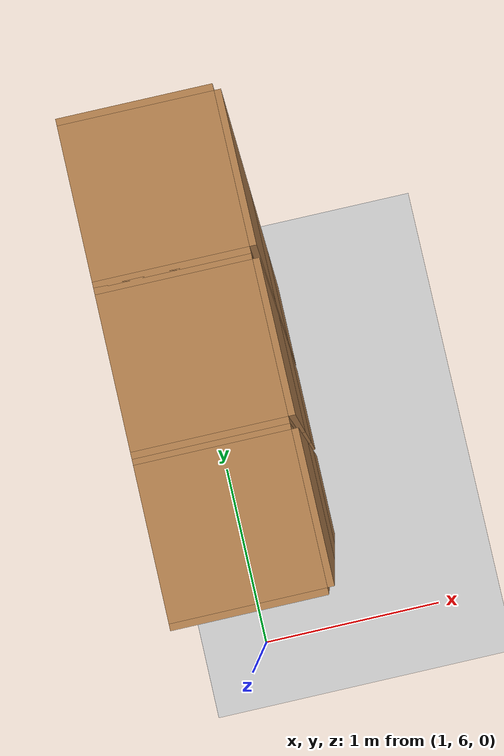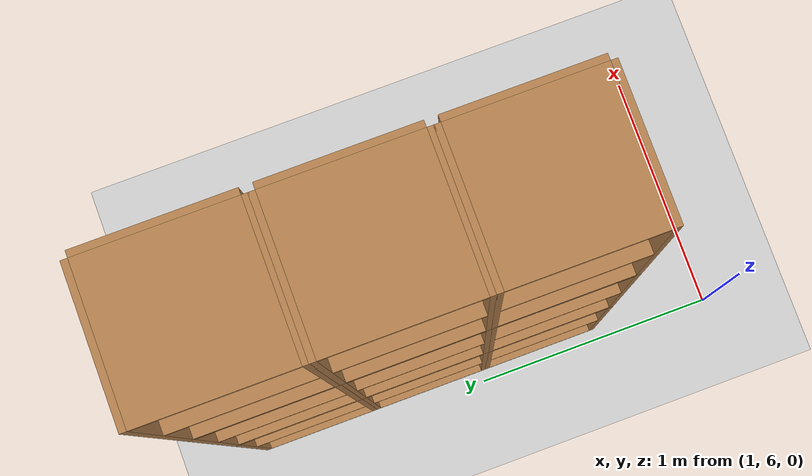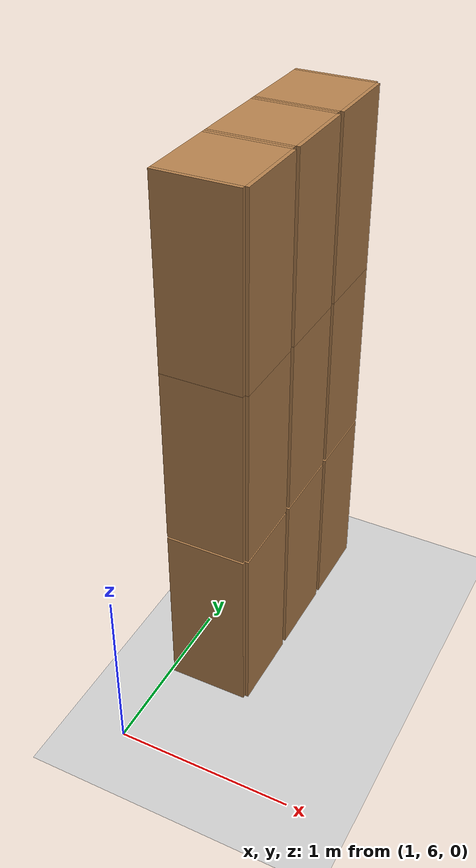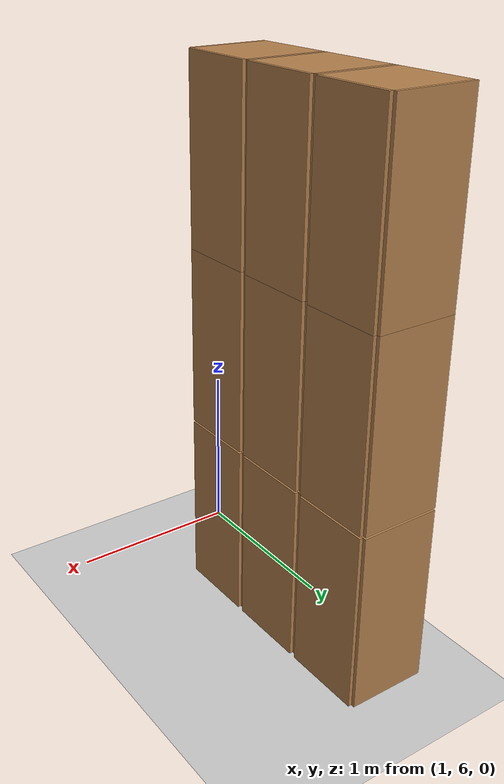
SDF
<sdf version="1.6">
 <world name="default">
  <model name="ground_plane">
   <static>1</static>
   <link name="link">
    <collision name="collision">
     <geometry><plane><normal>0 0 1</normal><size>100 100</size></plane></geometry>
     <surface>
      <contact><collide_bitmask>65535</collide_bitmask></contact>
      <friction><ode><mu>100</mu><mu2>50</mu2></ode></friction>
     </surface>
    </collision>
    <visual name="visual">
     <cast_shadows>0</cast_shadows>
     <geometry><plane><normal>0 0 1</normal><size>100 100</size></plane></geometry>
     <material>
      <script><uri>file://media/materials/scripts/gazebo.material</uri><name>Gazebo/Grey</name></script>
     </material>
    </visual>
   </link>
  </model>
  <model name="Locker18_clone_4_clone_2">
   <model name="Locker18">
    <model name="Locker3">
     <model name="cabinet">
      <static>1</static>
      <link name="cabinet_bottom_plate">
       <inertial>
        <pose>0 0 -1 0 -0 0</pose>
        <inertia><ixx>2.05</ixx><ixy>0</ixy><ixz>0</ixz><iyy>2.05</iyy><iyz>0</iyz><izz>2.05</izz></inertia>
        <mass>25</mass>
       </inertial>
       <collision name="cabinet_bottom_plate_geom">
        <pose>0 0 0.01 0 -0 0</pose>
        <geometry><box><size>0.45 0.45 0.02</size></box></geometry>
       </collision>
       <visual name="cabinet_bottom_plate_geom_visual">
        <pose>0 0 0.01 0 -0 0</pose>
        <geometry><box><size>0.45 0.45 0.02</size></box></geometry>
        <material>
         <script><uri>file://media/materials/scripts/gazebo.material</uri><name>Gazebo/Wood</name></script>
        </material>
       </visual>
       <collision name="cabinet_bottom_plate_geom_cabinet_back_plate">
        <pose>0.235 0 0.51 0 -0 0</pose>
        <geometry><box><size>0.02 0.45 1.02</size></box></geometry>
       </collision>
       <visual name="cabinet_bottom_plate_geom_cabinet_back_plate_visual">
        <pose>0.235 0 0.51 0 -0 0</pose>
        <geometry><box><size>0.02 0.45 1.02</size></box></geometry>
        <material>
         <script><uri>file://media/materials/scripts/gazebo.material</uri><name>Gazebo/Wood</name></script>
        </material>
       </visual>
       <collision name="cabinet_bottom_plate_geom_cabinet_left_plate">
        <pose>0 0.235 0.51 0 -0 0</pose>
        <geometry><box><size>0.45 0.02 1.02</size></box></geometry>
       </collision>
       <visual name="cabinet_bottom_plate_geom_cabinet_left_plate_visual">
        <pose>0 0.235 0.51 0 -0 0</pose>
        <geometry><box><size>0.45 0.02 1.02</size></box></geometry>
        <material>
         <script><uri>file://media/materials/scripts/gazebo.material</uri><name>Gazebo/Wood</name></script>
        </material>
       </visual>
       <collision name="cabinet_bottom_plate_geom_cabinet_middle_plate">
        <pose>0 0 0.51 0 -0 0</pose>
        <geometry><box><size>0.45 0.45 0.02</size></box></geometry>
       </collision>
       <visual name="cabinet_bottom_plate_geom_cabinet_middle_plate_visual">
        <pose>0 0 0.51 0 -0 0</pose>
        <geometry><box><size>0.45 0.45 0.02</size></box></geometry>
        <material>
         <script><uri>file://media/materials/scripts/gazebo.material</uri><name>Gazebo/Wood</name></script>
        </material>
       </visual>
       <collision name="cabinet_bottom_plate_geom_cabinet_right_plate">
        <pose>0 -0.235 0.51 0 -0 0</pose>
        <geometry><box><size>0.45 0.02 1.02</size></box></geometry>
       </collision>
       <visual name="cabinet_bottom_plate_geom_cabinet_right_plate_visual">
        <pose>0 -0.235 0.51 0 -0 0</pose>
        <geometry><box><size>0.45 0.02 1.02</size></box></geometry>
        <material>
         <script><uri>file://media/materials/scripts/gazebo.material</uri><name>Gazebo/Wood</name></script>
        </material>
       </visual>
       <collision name="cabinet_bottom_plate_geom_cabinet_top_plate">
        <pose>0 0 1.01 0 -0 0</pose>
        <geometry><box><size>0.45 0.45 0.02</size></box></geometry>
       </collision>
       <visual name="cabinet_bottom_plate_geom_cabinet_top_plate_visual">
        <pose>0 0 1.01 0 -0 0</pose>
        <geometry><box><size>0.45 0.45 0.02</size></box></geometry>
        <material>
         <script><uri>file://media/materials/scripts/gazebo.material</uri><name>Gazebo/Wood</name></script>
        </material>
       </visual>
      </link>
      <pose>-0.676968 1.45758 0 0 -0 0</pose>
     </model>
     <model name="cabinet_clone">
      <static>1</static>
      <link name="cabinet_bottom_plate">
       <inertial>
        <pose>0 0 -1 0 -0 0</pose>
        <inertia><ixx>2.05</ixx><ixy>0</ixy><ixz>0</ixz><iyy>2.05</iyy><iyz>0</iyz><izz>2.05</izz></inertia>
        <mass>25</mass>
       </inertial>
       <collision name="cabinet_bottom_plate_geom">
        <pose>0 0 0.01 0 -0 0</pose>
        <geometry><box><size>0.45 0.45 0.02</size></box></geometry>
       </collision>
       <visual name="cabinet_bottom_plate_geom_visual">
        <pose>0 0 0.01 0 -0 0</pose>
        <geometry><box><size>0.45 0.45 0.02</size></box></geometry>
        <material>
         <script><uri>file://media/materials/scripts/gazebo.material</uri><name>Gazebo/Wood</name></script>
        </material>
       </visual>
       <collision name="cabinet_bottom_plate_geom_cabinet_back_plate">
        <pose>0.235 0 0.51 0 -0 0</pose>
        <geometry><box><size>0.02 0.45 1.02</size></box></geometry>
       </collision>
       <visual name="cabinet_bottom_plate_geom_cabinet_back_plate_visual">
        <pose>0.235 0 0.51 0 -0 0</pose>
        <geometry><box><size>0.02 0.45 1.02</size></box></geometry>
        <material>
         <script><uri>file://media/materials/scripts/gazebo.material</uri><name>Gazebo/Wood</name></script>
        </material>
       </visual>
       <collision name="cabinet_bottom_plate_geom_cabinet_left_plate">
        <pose>0 0.235 0.51 0 -0 0</pose>
        <geometry><box><size>0.45 0.02 1.02</size></box></geometry>
       </collision>
       <visual name="cabinet_bottom_plate_geom_cabinet_left_plate_visual">
        <pose>0 0.235 0.51 0 -0 0</pose>
        <geometry><box><size>0.45 0.02 1.02</size></box></geometry>
        <material>
         <script><uri>file://media/materials/scripts/gazebo.material</uri><name>Gazebo/Wood</name></script>
        </material>
       </visual>
       <collision name="cabinet_bottom_plate_geom_cabinet_middle_plate">
        <pose>0 0 0.51 0 -0 0</pose>
        <geometry><box><size>0.45 0.45 0.02</size></box></geometry>
       </collision>
       <visual name="cabinet_bottom_plate_geom_cabinet_middle_plate_visual">
        <pose>0 0 0.51 0 -0 0</pose>
        <geometry><box><size>0.45 0.45 0.02</size></box></geometry>
        <material>
         <script><uri>file://media/materials/scripts/gazebo.material</uri><name>Gazebo/Wood</name></script>
        </material>
       </visual>
       <collision name="cabinet_bottom_plate_geom_cabinet_right_plate">
        <pose>0 -0.235 0.51 0 -0 0</pose>
        <geometry><box><size>0.45 0.02 1.02</size></box></geometry>
       </collision>
       <visual name="cabinet_bottom_plate_geom_cabinet_right_plate_visual">
        <pose>0 -0.235 0.51 0 -0 0</pose>
        <geometry><box><size>0.45 0.02 1.02</size></box></geometry>
        <material>
         <script><uri>file://media/materials/scripts/gazebo.material</uri><name>Gazebo/Wood</name></script>
        </material>
       </visual>
       <collision name="cabinet_bottom_plate_geom_cabinet_top_plate">
        <pose>0 0 1.01 0 -0 0</pose>
        <geometry><box><size>0.45 0.45 0.02</size></box></geometry>
       </collision>
       <visual name="cabinet_bottom_plate_geom_cabinet_top_plate_visual">
        <pose>0 0 1.01 0 -0 0</pose>
        <geometry><box><size>0.45 0.45 0.02</size></box></geometry>
        <material>
         <script><uri>file://media/materials/scripts/gazebo.material</uri><name>Gazebo/Wood</name></script>
        </material>
       </visual>
      </link>
      <pose>-0.676968 0.970971 0 0 -0 0</pose>
     </model>
     <model name="cabinet_clone_0">
      <static>1</static>
      <link name="cabinet_bottom_plate">
       <inertial>
        <pose>0 0 -1 0 -0 0</pose>
        <inertia><ixx>2.05</ixx><ixy>0</ixy><ixz>0</ixz><iyy>2.05</iyy><iyz>0</iyz><izz>2.05</izz></inertia>
        <mass>25</mass>
       </inertial>
       <collision name="cabinet_bottom_plate_geom">
        <pose>0 0 0.01 0 -0 0</pose>
        <geometry><box><size>0.45 0.45 0.02</size></box></geometry>
       </collision>
       <visual name="cabinet_bottom_plate_geom_visual">
        <pose>0 0 0.01 0 -0 0</pose>
        <geometry><box><size>0.45 0.45 0.02</size></box></geometry>
        <material>
         <script><uri>file://media/materials/scripts/gazebo.material</uri><name>Gazebo/Wood</name></script>
        </material>
       </visual>
       <collision name="cabinet_bottom_plate_geom_cabinet_back_plate">
        <pose>0.235 0 0.51 0 -0 0</pose>
        <geometry><box><size>0.02 0.45 1.02</size></box></geometry>
       </collision>
       <visual name="cabinet_bottom_plate_geom_cabinet_back_plate_visual">
        <pose>0.235 0 0.51 0 -0 0</pose>
        <geometry><box><size>0.02 0.45 1.02</size></box></geometry>
        <material>
         <script><uri>file://media/materials/scripts/gazebo.material</uri><name>Gazebo/Wood</name></script>
        </material>
       </visual>
       <collision name="cabinet_bottom_plate_geom_cabinet_left_plate">
        <pose>0 0.235 0.51 0 -0 0</pose>
        <geometry><box><size>0.45 0.02 1.02</size></box></geometry>
       </collision>
       <visual name="cabinet_bottom_plate_geom_cabinet_left_plate_visual">
        <pose>0 0.235 0.51 0 -0 0</pose>
        <geometry><box><size>0.45 0.02 1.02</size></box></geometry>
        <material>
         <script><uri>file://media/materials/scripts/gazebo.material</uri><name>Gazebo/Wood</name></script>
        </material>
       </visual>
       <collision name="cabinet_bottom_plate_geom_cabinet_middle_plate">
        <pose>0 0 0.51 0 -0 0</pose>
        <geometry><box><size>0.45 0.45 0.02</size></box></geometry>
       </collision>
       <visual name="cabinet_bottom_plate_geom_cabinet_middle_plate_visual">
        <pose>0 0 0.51 0 -0 0</pose>
        <geometry><box><size>0.45 0.45 0.02</size></box></geometry>
        <material>
         <script><uri>file://media/materials/scripts/gazebo.material</uri><name>Gazebo/Wood</name></script>
        </material>
       </visual>
       <collision name="cabinet_bottom_plate_geom_cabinet_right_plate">
        <pose>0 -0.235 0.51 0 -0 0</pose>
        <geometry><box><size>0.45 0.02 1.02</size></box></geometry>
       </collision>
       <visual name="cabinet_bottom_plate_geom_cabinet_right_plate_visual">
        <pose>0 -0.235 0.51 0 -0 0</pose>
        <geometry><box><size>0.45 0.02 1.02</size></box></geometry>
        <material>
         <script><uri>file://media/materials/scripts/gazebo.material</uri><name>Gazebo/Wood</name></script>
        </material>
       </visual>
       <collision name="cabinet_bottom_plate_geom_cabinet_top_plate">
        <pose>0 0 1.01 0 -0 0</pose>
        <geometry><box><size>0.45 0.45 0.02</size></box></geometry>
       </collision>
       <visual name="cabinet_bottom_plate_geom_cabinet_top_plate_visual">
        <pose>0 0 1.01 0 -0 0</pose>
        <geometry><box><size>0.45 0.45 0.02</size></box></geometry>
        <material>
         <script><uri>file://media/materials/scripts/gazebo.material</uri><name>Gazebo/Wood</name></script>
        </material>
       </visual>
      </link>
      <pose>-0.676968 0.48391 0 0 -0 0</pose>
     </model>
     <static>0</static>
     <pose>0 3e-06 -1.02763 0 -0 0</pose>
    </model>
    <model name="Locker3_clone">
     <model name="cabinet">
      <static>1</static>
      <link name="cabinet_bottom_plate">
       <inertial>
        <pose>0 0 -1 0 -0 0</pose>
        <inertia><ixx>2.05</ixx><ixy>0</ixy><ixz>0</ixz><iyy>2.05</iyy><iyz>0</iyz><izz>2.05</izz></inertia>
        <mass>25</mass>
       </inertial>
       <collision name="cabinet_bottom_plate_geom">
        <pose>0 0 0.01 0 -0 0</pose>
        <geometry><box><size>0.45 0.45 0.02</size></box></geometry>
       </collision>
       <visual name="cabinet_bottom_plate_geom_visual">
        <pose>0 0 0.01 0 -0 0</pose>
        <geometry><box><size>0.45 0.45 0.02</size></box></geometry>
        <material>
         <script><uri>file://media/materials/scripts/gazebo.material</uri><name>Gazebo/Wood</name></script>
        </material>
       </visual>
       <collision name="cabinet_bottom_plate_geom_cabinet_back_plate">
        <pose>0.235 0 0.51 0 -0 0</pose>
        <geometry><box><size>0.02 0.45 1.02</size></box></geometry>
       </collision>
       <visual name="cabinet_bottom_plate_geom_cabinet_back_plate_visual">
        <pose>0.235 0 0.51 0 -0 0</pose>
        <geometry><box><size>0.02 0.45 1.02</size></box></geometry>
        <material>
         <script><uri>file://media/materials/scripts/gazebo.material</uri><name>Gazebo/Wood</name></script>
        </material>
       </visual>
       <collision name="cabinet_bottom_plate_geom_cabinet_left_plate">
        <pose>0 0.235 0.51 0 -0 0</pose>
        <geometry><box><size>0.45 0.02 1.02</size></box></geometry>
       </collision>
       <visual name="cabinet_bottom_plate_geom_cabinet_left_plate_visual">
        <pose>0 0.235 0.51 0 -0 0</pose>
        <geometry><box><size>0.45 0.02 1.02</size></box></geometry>
        <material>
         <script><uri>file://media/materials/scripts/gazebo.material</uri><name>Gazebo/Wood</name></script>
        </material>
       </visual>
       <collision name="cabinet_bottom_plate_geom_cabinet_middle_plate">
        <pose>0 0 0.51 0 -0 0</pose>
        <geometry><box><size>0.45 0.45 0.02</size></box></geometry>
       </collision>
       <visual name="cabinet_bottom_plate_geom_cabinet_middle_plate_visual">
        <pose>0 0 0.51 0 -0 0</pose>
        <geometry><box><size>0.45 0.45 0.02</size></box></geometry>
        <material>
         <script><uri>file://media/materials/scripts/gazebo.material</uri><name>Gazebo/Wood</name></script>
        </material>
       </visual>
       <collision name="cabinet_bottom_plate_geom_cabinet_right_plate">
        <pose>0 -0.235 0.51 0 -0 0</pose>
        <geometry><box><size>0.45 0.02 1.02</size></box></geometry>
       </collision>
       <visual name="cabinet_bottom_plate_geom_cabinet_right_plate_visual">
        <pose>0 -0.235 0.51 0 -0 0</pose>
        <geometry><box><size>0.45 0.02 1.02</size></box></geometry>
        <material>
         <script><uri>file://media/materials/scripts/gazebo.material</uri><name>Gazebo/Wood</name></script>
        </material>
       </visual>
       <collision name="cabinet_bottom_plate_geom_cabinet_top_plate">
        <pose>0 0 1.01 0 -0 0</pose>
        <geometry><box><size>0.45 0.45 0.02</size></box></geometry>
       </collision>
       <visual name="cabinet_bottom_plate_geom_cabinet_top_plate_visual">
        <pose>0 0 1.01 0 -0 0</pose>
        <geometry><box><size>0.45 0.45 0.02</size></box></geometry>
        <material>
         <script><uri>file://media/materials/scripts/gazebo.material</uri><name>Gazebo/Wood</name></script>
        </material>
       </visual>
      </link>
      <pose>-0.676968 1.45758 0 0 -0 0</pose>
     </model>
     <model name="cabinet_clone">
      <static>1</static>
      <link name="cabinet_bottom_plate">
       <inertial>
        <pose>0 0 -1 0 -0 0</pose>
        <inertia><ixx>2.05</ixx><ixy>0</ixy><ixz>0</ixz><iyy>2.05</iyy><iyz>0</iyz><izz>2.05</izz></inertia>
        <mass>25</mass>
       </inertial>
       <collision name="cabinet_bottom_plate_geom">
        <pose>0 0 0.01 0 -0 0</pose>
        <geometry><box><size>0.45 0.45 0.02</size></box></geometry>
       </collision>
       <visual name="cabinet_bottom_plate_geom_visual">
        <pose>0 0 0.01 0 -0 0</pose>
        <geometry><box><size>0.45 0.45 0.02</size></box></geometry>
        <material>
         <script><uri>file://media/materials/scripts/gazebo.material</uri><name>Gazebo/Wood</name></script>
        </material>
       </visual>
       <collision name="cabinet_bottom_plate_geom_cabinet_back_plate">
        <pose>0.235 0 0.51 0 -0 0</pose>
        <geometry><box><size>0.02 0.45 1.02</size></box></geometry>
       </collision>
       <visual name="cabinet_bottom_plate_geom_cabinet_back_plate_visual">
        <pose>0.235 0 0.51 0 -0 0</pose>
        <geometry><box><size>0.02 0.45 1.02</size></box></geometry>
        <material>
         <script><uri>file://media/materials/scripts/gazebo.material</uri><name>Gazebo/Wood</name></script>
        </material>
       </visual>
       <collision name="cabinet_bottom_plate_geom_cabinet_left_plate">
        <pose>0 0.235 0.51 0 -0 0</pose>
        <geometry><box><size>0.45 0.02 1.02</size></box></geometry>
       </collision>
       <visual name="cabinet_bottom_plate_geom_cabinet_left_plate_visual">
        <pose>0 0.235 0.51 0 -0 0</pose>
        <geometry><box><size>0.45 0.02 1.02</size></box></geometry>
        <material>
         <script><uri>file://media/materials/scripts/gazebo.material</uri><name>Gazebo/Wood</name></script>
        </material>
       </visual>
       <collision name="cabinet_bottom_plate_geom_cabinet_middle_plate">
        <pose>0 0 0.51 0 -0 0</pose>
        <geometry><box><size>0.45 0.45 0.02</size></box></geometry>
       </collision>
       <visual name="cabinet_bottom_plate_geom_cabinet_middle_plate_visual">
        <pose>0 0 0.51 0 -0 0</pose>
        <geometry><box><size>0.45 0.45 0.02</size></box></geometry>
        <material>
         <script><uri>file://media/materials/scripts/gazebo.material</uri><name>Gazebo/Wood</name></script>
        </material>
       </visual>
       <collision name="cabinet_bottom_plate_geom_cabinet_right_plate">
        <pose>0 -0.235 0.51 0 -0 0</pose>
        <geometry><box><size>0.45 0.02 1.02</size></box></geometry>
       </collision>
       <visual name="cabinet_bottom_plate_geom_cabinet_right_plate_visual">
        <pose>0 -0.235 0.51 0 -0 0</pose>
        <geometry><box><size>0.45 0.02 1.02</size></box></geometry>
        <material>
         <script><uri>file://media/materials/scripts/gazebo.material</uri><name>Gazebo/Wood</name></script>
        </material>
       </visual>
       <collision name="cabinet_bottom_plate_geom_cabinet_top_plate">
        <pose>0 0 1.01 0 -0 0</pose>
        <geometry><box><size>0.45 0.45 0.02</size></box></geometry>
       </collision>
       <visual name="cabinet_bottom_plate_geom_cabinet_top_plate_visual">
        <pose>0 0 1.01 0 -0 0</pose>
        <geometry><box><size>0.45 0.45 0.02</size></box></geometry>
        <material>
         <script><uri>file://media/materials/scripts/gazebo.material</uri><name>Gazebo/Wood</name></script>
        </material>
       </visual>
      </link>
      <pose>-0.676968 0.970971 0 0 -0 0</pose>
     </model>
     <model name="cabinet_clone_0">
      <static>1</static>
      <link name="cabinet_bottom_plate">
       <inertial>
        <pose>0 0 -1 0 -0 0</pose>
        <inertia><ixx>2.05</ixx><ixy>0</ixy><ixz>0</ixz><iyy>2.05</iyy><iyz>0</iyz><izz>2.05</izz></inertia>
        <mass>25</mass>
       </inertial>
       <collision name="cabinet_bottom_plate_geom">
        <pose>0 0 0.01 0 -0 0</pose>
        <geometry><box><size>0.45 0.45 0.02</size></box></geometry>
       </collision>
       <visual name="cabinet_bottom_plate_geom_visual">
        <pose>0 0 0.01 0 -0 0</pose>
        <geometry><box><size>0.45 0.45 0.02</size></box></geometry>
        <material>
         <script><uri>file://media/materials/scripts/gazebo.material</uri><name>Gazebo/Wood</name></script>
        </material>
       </visual>
       <collision name="cabinet_bottom_plate_geom_cabinet_back_plate">
        <pose>0.235 0 0.51 0 -0 0</pose>
        <geometry><box><size>0.02 0.45 1.02</size></box></geometry>
       </collision>
       <visual name="cabinet_bottom_plate_geom_cabinet_back_plate_visual">
        <pose>0.235 0 0.51 0 -0 0</pose>
        <geometry><box><size>0.02 0.45 1.02</size></box></geometry>
        <material>
         <script><uri>file://media/materials/scripts/gazebo.material</uri><name>Gazebo/Wood</name></script>
        </material>
       </visual>
       <collision name="cabinet_bottom_plate_geom_cabinet_left_plate">
        <pose>0 0.235 0.51 0 -0 0</pose>
        <geometry><box><size>0.45 0.02 1.02</size></box></geometry>
       </collision>
       <visual name="cabinet_bottom_plate_geom_cabinet_left_plate_visual">
        <pose>0 0.235 0.51 0 -0 0</pose>
        <geometry><box><size>0.45 0.02 1.02</size></box></geometry>
        <material>
         <script><uri>file://media/materials/scripts/gazebo.material</uri><name>Gazebo/Wood</name></script>
        </material>
       </visual>
       <collision name="cabinet_bottom_plate_geom_cabinet_middle_plate">
        <pose>0 0 0.51 0 -0 0</pose>
        <geometry><box><size>0.45 0.45 0.02</size></box></geometry>
       </collision>
       <visual name="cabinet_bottom_plate_geom_cabinet_middle_plate_visual">
        <pose>0 0 0.51 0 -0 0</pose>
        <geometry><box><size>0.45 0.45 0.02</size></box></geometry>
        <material>
         <script><uri>file://media/materials/scripts/gazebo.material</uri><name>Gazebo/Wood</name></script>
        </material>
       </visual>
       <collision name="cabinet_bottom_plate_geom_cabinet_right_plate">
        <pose>0 -0.235 0.51 0 -0 0</pose>
        <geometry><box><size>0.45 0.02 1.02</size></box></geometry>
       </collision>
       <visual name="cabinet_bottom_plate_geom_cabinet_right_plate_visual">
        <pose>0 -0.235 0.51 0 -0 0</pose>
        <geometry><box><size>0.45 0.02 1.02</size></box></geometry>
        <material>
         <script><uri>file://media/materials/scripts/gazebo.material</uri><name>Gazebo/Wood</name></script>
        </material>
       </visual>
       <collision name="cabinet_bottom_plate_geom_cabinet_top_plate">
        <pose>0 0 1.01 0 -0 0</pose>
        <geometry><box><size>0.45 0.45 0.02</size></box></geometry>
       </collision>
       <visual name="cabinet_bottom_plate_geom_cabinet_top_plate_visual">
        <pose>0 0 1.01 0 -0 0</pose>
        <geometry><box><size>0.45 0.45 0.02</size></box></geometry>
        <material>
         <script><uri>file://media/materials/scripts/gazebo.material</uri><name>Gazebo/Wood</name></script>
        </material>
       </visual>
      </link>
      <pose>-0.676968 0.48391 0 0 -0 0</pose>
     </model>
     <static>0</static>
     <pose>0 3e-06 0.003717 0 -0 0</pose>
    </model>
    <model name="Locker3_clone_clone">
     <model name="cabinet">
      <static>1</static>
      <link name="cabinet_bottom_plate">
       <inertial>
        <pose>0 0 -1 0 -0 0</pose>
        <inertia><ixx>2.05</ixx><ixy>0</ixy><ixz>0</ixz><iyy>2.05</iyy><iyz>0</iyz><izz>2.05</izz></inertia>
        <mass>25</mass>
       </inertial>
       <collision name="cabinet_bottom_plate_geom">
        <pose>0 0 0.01 0 -0 0</pose>
        <geometry><box><size>0.45 0.45 0.02</size></box></geometry>
       </collision>
       <visual name="cabinet_bottom_plate_geom_visual">
        <pose>0 0 0.01 0 -0 0</pose>
        <geometry><box><size>0.45 0.45 0.02</size></box></geometry>
        <material>
         <script><uri>file://media/materials/scripts/gazebo.material</uri><name>Gazebo/Wood</name></script>
        </material>
       </visual>
       <collision name="cabinet_bottom_plate_geom_cabinet_back_plate">
        <pose>0.235 0 0.51 0 -0 0</pose>
        <geometry><box><size>0.02 0.45 1.02</size></box></geometry>
       </collision>
       <visual name="cabinet_bottom_plate_geom_cabinet_back_plate_visual">
        <pose>0.235 0 0.51 0 -0 0</pose>
        <geometry><box><size>0.02 0.45 1.02</size></box></geometry>
        <material>
         <script><uri>file://media/materials/scripts/gazebo.material</uri><name>Gazebo/Wood</name></script>
        </material>
       </visual>
       <collision name="cabinet_bottom_plate_geom_cabinet_left_plate">
        <pose>0 0.235 0.51 0 -0 0</pose>
        <geometry><box><size>0.45 0.02 1.02</size></box></geometry>
       </collision>
       <visual name="cabinet_bottom_plate_geom_cabinet_left_plate_visual">
        <pose>0 0.235 0.51 0 -0 0</pose>
        <geometry><box><size>0.45 0.02 1.02</size></box></geometry>
        <material>
         <script><uri>file://media/materials/scripts/gazebo.material</uri><name>Gazebo/Wood</name></script>
        </material>
       </visual>
       <collision name="cabinet_bottom_plate_geom_cabinet_middle_plate">
        <pose>0 0 0.51 0 -0 0</pose>
        <geometry><box><size>0.45 0.45 0.02</size></box></geometry>
       </collision>
       <visual name="cabinet_bottom_plate_geom_cabinet_middle_plate_visual">
        <pose>0 0 0.51 0 -0 0</pose>
        <geometry><box><size>0.45 0.45 0.02</size></box></geometry>
        <material>
         <script><uri>file://media/materials/scripts/gazebo.material</uri><name>Gazebo/Wood</name></script>
        </material>
       </visual>
       <collision name="cabinet_bottom_plate_geom_cabinet_right_plate">
        <pose>0 -0.235 0.51 0 -0 0</pose>
        <geometry><box><size>0.45 0.02 1.02</size></box></geometry>
       </collision>
       <visual name="cabinet_bottom_plate_geom_cabinet_right_plate_visual">
        <pose>0 -0.235 0.51 0 -0 0</pose>
        <geometry><box><size>0.45 0.02 1.02</size></box></geometry>
        <material>
         <script><uri>file://media/materials/scripts/gazebo.material</uri><name>Gazebo/Wood</name></script>
        </material>
       </visual>
       <collision name="cabinet_bottom_plate_geom_cabinet_top_plate">
        <pose>0 0 1.01 0 -0 0</pose>
        <geometry><box><size>0.45 0.45 0.02</size></box></geometry>
       </collision>
       <visual name="cabinet_bottom_plate_geom_cabinet_top_plate_visual">
        <pose>0 0 1.01 0 -0 0</pose>
        <geometry><box><size>0.45 0.45 0.02</size></box></geometry>
        <material>
         <script><uri>file://media/materials/scripts/gazebo.material</uri><name>Gazebo/Wood</name></script>
        </material>
       </visual>
      </link>
      <pose>-0.676968 1.45758 0 0 -0 0</pose>
     </model>
     <model name="cabinet_clone">
      <static>1</static>
      <link name="cabinet_bottom_plate">
       <inertial>
        <pose>0 0 -1 0 -0 0</pose>
        <inertia><ixx>2.05</ixx><ixy>0</ixy><ixz>0</ixz><iyy>2.05</iyy><iyz>0</iyz><izz>2.05</izz></inertia>
        <mass>25</mass>
       </inertial>
       <collision name="cabinet_bottom_plate_geom">
        <pose>0 0 0.01 0 -0 0</pose>
        <geometry><box><size>0.45 0.45 0.02</size></box></geometry>
       </collision>
       <visual name="cabinet_bottom_plate_geom_visual">
        <pose>0 0 0.01 0 -0 0</pose>
        <geometry><box><size>0.45 0.45 0.02</size></box></geometry>
        <material>
         <script><uri>file://media/materials/scripts/gazebo.material</uri><name>Gazebo/Wood</name></script>
        </material>
       </visual>
       <collision name="cabinet_bottom_plate_geom_cabinet_back_plate">
        <pose>0.235 0 0.51 0 -0 0</pose>
        <geometry><box><size>0.02 0.45 1.02</size></box></geometry>
       </collision>
       <visual name="cabinet_bottom_plate_geom_cabinet_back_plate_visual">
        <pose>0.235 0 0.51 0 -0 0</pose>
        <geometry><box><size>0.02 0.45 1.02</size></box></geometry>
        <material>
         <script><uri>file://media/materials/scripts/gazebo.material</uri><name>Gazebo/Wood</name></script>
        </material>
       </visual>
       <collision name="cabinet_bottom_plate_geom_cabinet_left_plate">
        <pose>0 0.235 0.51 0 -0 0</pose>
        <geometry><box><size>0.45 0.02 1.02</size></box></geometry>
       </collision>
       <visual name="cabinet_bottom_plate_geom_cabinet_left_plate_visual">
        <pose>0 0.235 0.51 0 -0 0</pose>
        <geometry><box><size>0.45 0.02 1.02</size></box></geometry>
        <material>
         <script><uri>file://media/materials/scripts/gazebo.material</uri><name>Gazebo/Wood</name></script>
        </material>
       </visual>
       <collision name="cabinet_bottom_plate_geom_cabinet_middle_plate">
        <pose>0 0 0.51 0 -0 0</pose>
        <geometry><box><size>0.45 0.45 0.02</size></box></geometry>
       </collision>
       <visual name="cabinet_bottom_plate_geom_cabinet_middle_plate_visual">
        <pose>0 0 0.51 0 -0 0</pose>
        <geometry><box><size>0.45 0.45 0.02</size></box></geometry>
        <material>
         <script><uri>file://media/materials/scripts/gazebo.material</uri><name>Gazebo/Wood</name></script>
        </material>
       </visual>
       <collision name="cabinet_bottom_plate_geom_cabinet_right_plate">
        <pose>0 -0.235 0.51 0 -0 0</pose>
        <geometry><box><size>0.45 0.02 1.02</size></box></geometry>
       </collision>
       <visual name="cabinet_bottom_plate_geom_cabinet_right_plate_visual">
        <pose>0 -0.235 0.51 0 -0 0</pose>
        <geometry><box><size>0.45 0.02 1.02</size></box></geometry>
        <material>
         <script><uri>file://media/materials/scripts/gazebo.material</uri><name>Gazebo/Wood</name></script>
        </material>
       </visual>
       <collision name="cabinet_bottom_plate_geom_cabinet_top_plate">
        <pose>0 0 1.01 0 -0 0</pose>
        <geometry><box><size>0.45 0.45 0.02</size></box></geometry>
       </collision>
       <visual name="cabinet_bottom_plate_geom_cabinet_top_plate_visual">
        <pose>0 0 1.01 0 -0 0</pose>
        <geometry><box><size>0.45 0.45 0.02</size></box></geometry>
        <material>
         <script><uri>file://media/materials/scripts/gazebo.material</uri><name>Gazebo/Wood</name></script>
        </material>
       </visual>
      </link>
      <pose>-0.676968 0.970971 0 0 -0 0</pose>
     </model>
     <model name="cabinet_clone_0">
      <static>1</static>
      <link name="cabinet_bottom_plate">
       <inertial>
        <pose>0 0 -1 0 -0 0</pose>
        <inertia><ixx>2.05</ixx><ixy>0</ixy><ixz>0</ixz><iyy>2.05</iyy><iyz>0</iyz><izz>2.05</izz></inertia>
        <mass>25</mass>
       </inertial>
       <collision name="cabinet_bottom_plate_geom">
        <pose>0 0 0.01 0 -0 0</pose>
        <geometry><box><size>0.45 0.45 0.02</size></box></geometry>
       </collision>
       <visual name="cabinet_bottom_plate_geom_visual">
        <pose>0 0 0.01 0 -0 0</pose>
        <geometry><box><size>0.45 0.45 0.02</size></box></geometry>
        <material>
         <script><uri>file://media/materials/scripts/gazebo.material</uri><name>Gazebo/Wood</name></script>
        </material>
       </visual>
       <collision name="cabinet_bottom_plate_geom_cabinet_back_plate">
        <pose>0.235 0 0.51 0 -0 0</pose>
        <geometry><box><size>0.02 0.45 1.02</size></box></geometry>
       </collision>
       <visual name="cabinet_bottom_plate_geom_cabinet_back_plate_visual">
        <pose>0.235 0 0.51 0 -0 0</pose>
        <geometry><box><size>0.02 0.45 1.02</size></box></geometry>
        <material>
         <script><uri>file://media/materials/scripts/gazebo.material</uri><name>Gazebo/Wood</name></script>
        </material>
       </visual>
       <collision name="cabinet_bottom_plate_geom_cabinet_left_plate">
        <pose>0 0.235 0.51 0 -0 0</pose>
        <geometry><box><size>0.45 0.02 1.02</size></box></geometry>
       </collision>
       <visual name="cabinet_bottom_plate_geom_cabinet_left_plate_visual">
        <pose>0 0.235 0.51 0 -0 0</pose>
        <geometry><box><size>0.45 0.02 1.02</size></box></geometry>
        <material>
         <script><uri>file://media/materials/scripts/gazebo.material</uri><name>Gazebo/Wood</name></script>
        </material>
       </visual>
       <collision name="cabinet_bottom_plate_geom_cabinet_middle_plate">
        <pose>0 0 0.51 0 -0 0</pose>
        <geometry><box><size>0.45 0.45 0.02</size></box></geometry>
       </collision>
       <visual name="cabinet_bottom_plate_geom_cabinet_middle_plate_visual">
        <pose>0 0 0.51 0 -0 0</pose>
        <geometry><box><size>0.45 0.45 0.02</size></box></geometry>
        <material>
         <script><uri>file://media/materials/scripts/gazebo.material</uri><name>Gazebo/Wood</name></script>
        </material>
       </visual>
       <collision name="cabinet_bottom_plate_geom_cabinet_right_plate">
        <pose>0 -0.235 0.51 0 -0 0</pose>
        <geometry><box><size>0.45 0.02 1.02</size></box></geometry>
       </collision>
       <visual name="cabinet_bottom_plate_geom_cabinet_right_plate_visual">
        <pose>0 -0.235 0.51 0 -0 0</pose>
        <geometry><box><size>0.45 0.02 1.02</size></box></geometry>
        <material>
         <script><uri>file://media/materials/scripts/gazebo.material</uri><name>Gazebo/Wood</name></script>
        </material>
       </visual>
       <collision name="cabinet_bottom_plate_geom_cabinet_top_plate">
        <pose>0 0 1.01 0 -0 0</pose>
        <geometry><box><size>0.45 0.45 0.02</size></box></geometry>
       </collision>
       <visual name="cabinet_bottom_plate_geom_cabinet_top_plate_visual">
        <pose>0 0 1.01 0 -0 0</pose>
        <geometry><box><size>0.45 0.45 0.02</size></box></geometry>
        <material>
         <script><uri>file://media/materials/scripts/gazebo.material</uri><name>Gazebo/Wood</name></script>
        </material>
       </visual>
      </link>
      <pose>-0.676968 0.48391 0 0 -0 0</pose>
     </model>
     <static>0</static>
     <pose>0 3e-06 1.02391 0 -0 0</pose>
    </model>
    <static>0</static>
    <pose>-0 4e-06 4e-06 0 -0 0</pose>
   </model>
   <static>0</static>
   <pose>1.94577 6.25116 1.08672 0 -0 0</pose>
  </model>
 </world>
</sdf>
